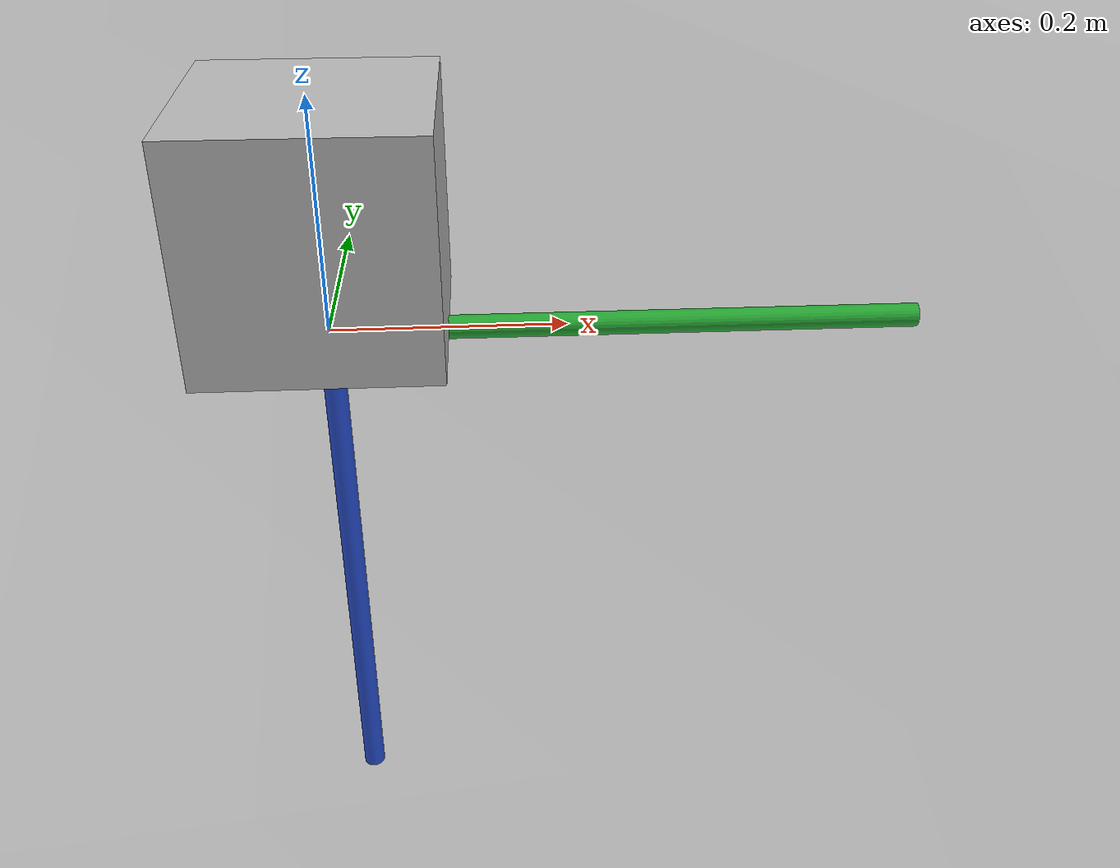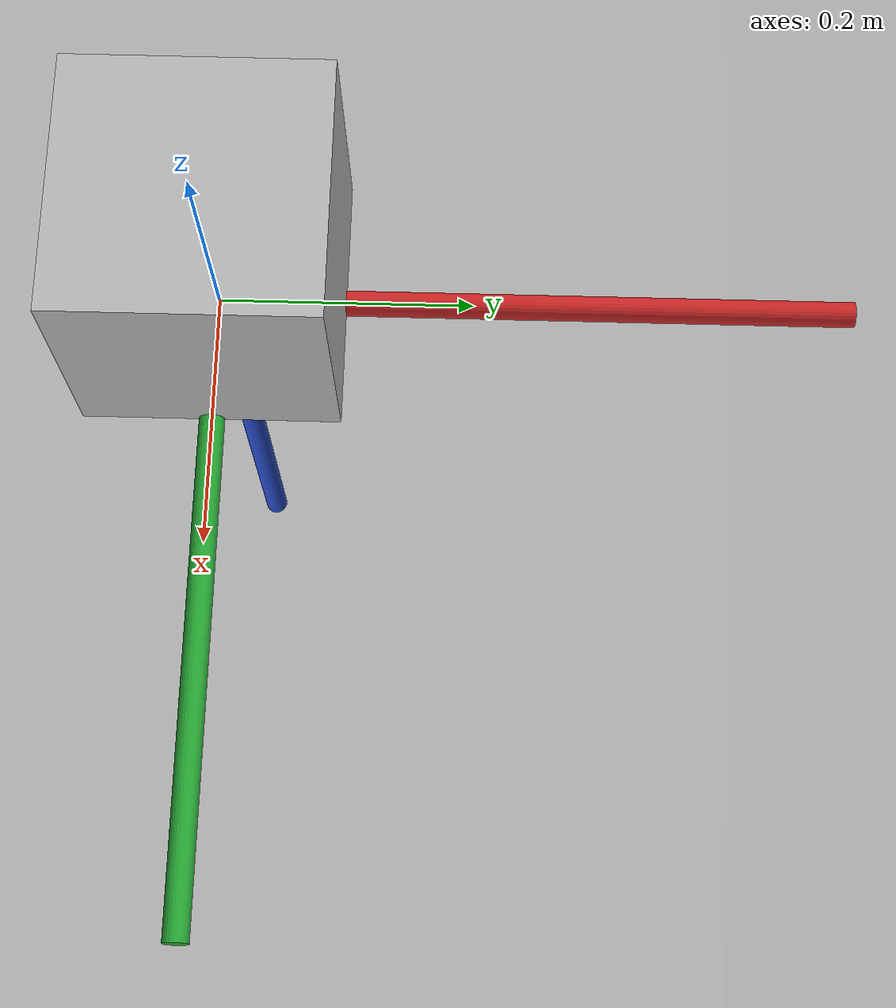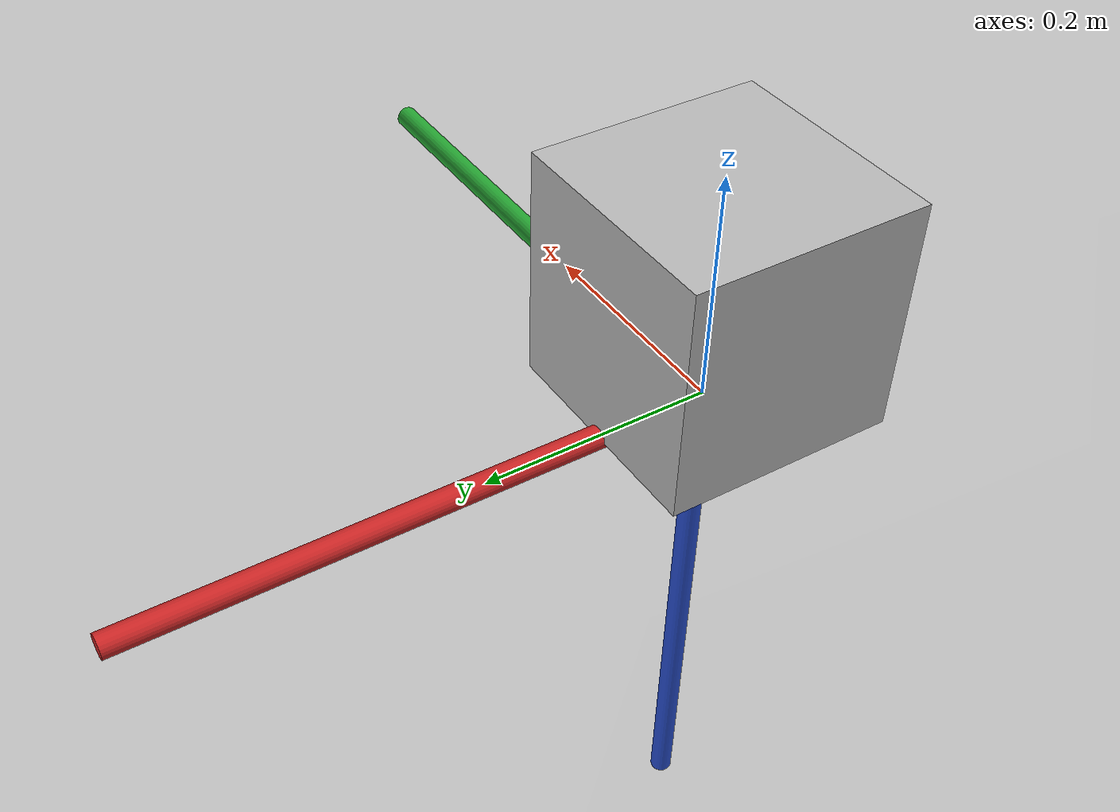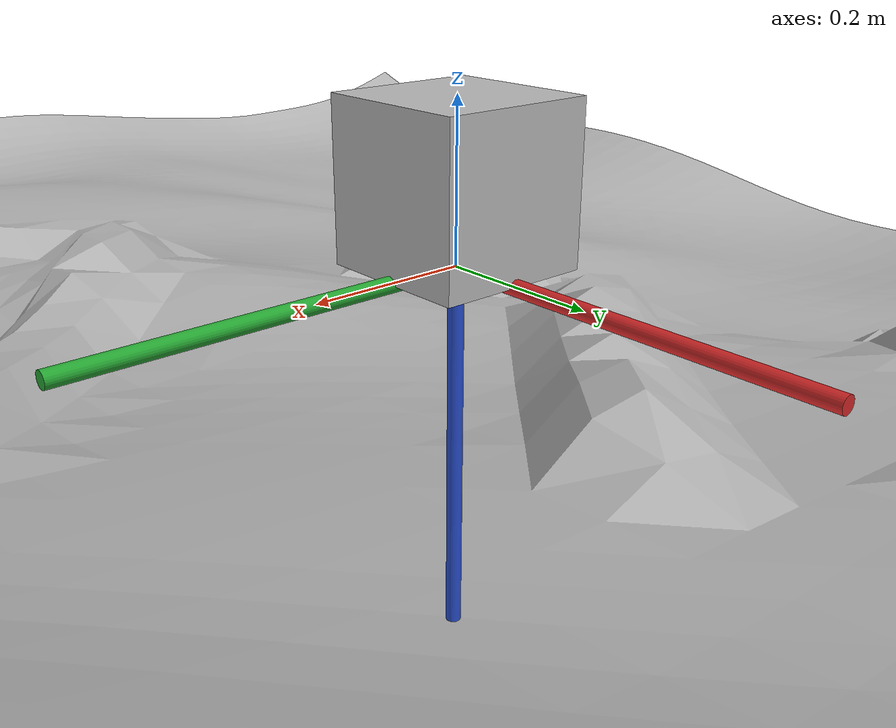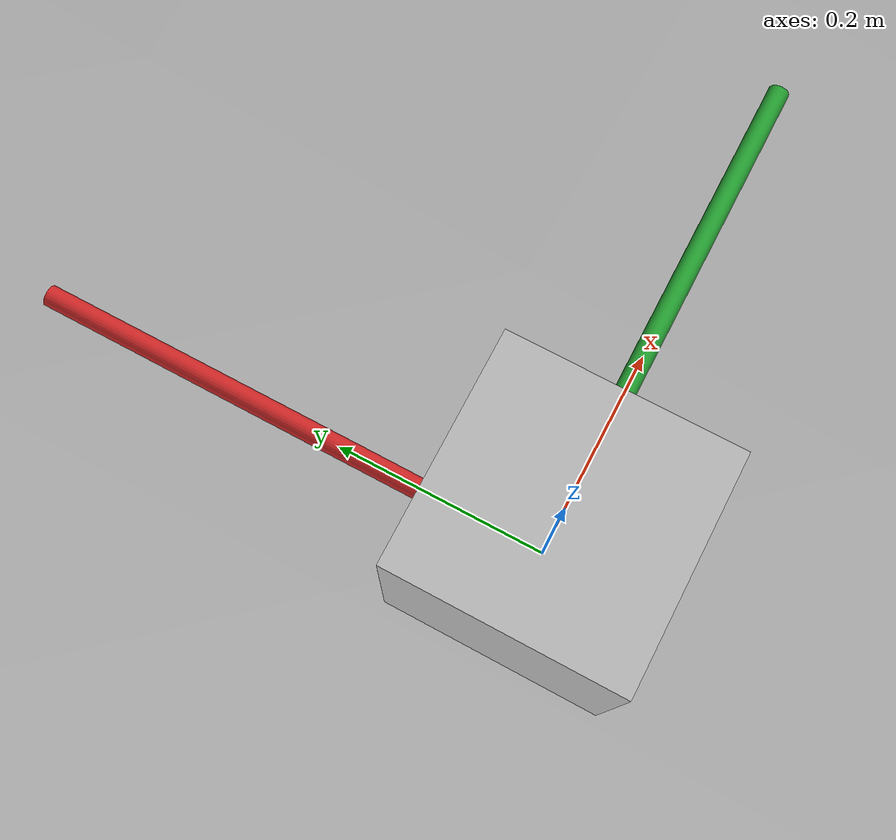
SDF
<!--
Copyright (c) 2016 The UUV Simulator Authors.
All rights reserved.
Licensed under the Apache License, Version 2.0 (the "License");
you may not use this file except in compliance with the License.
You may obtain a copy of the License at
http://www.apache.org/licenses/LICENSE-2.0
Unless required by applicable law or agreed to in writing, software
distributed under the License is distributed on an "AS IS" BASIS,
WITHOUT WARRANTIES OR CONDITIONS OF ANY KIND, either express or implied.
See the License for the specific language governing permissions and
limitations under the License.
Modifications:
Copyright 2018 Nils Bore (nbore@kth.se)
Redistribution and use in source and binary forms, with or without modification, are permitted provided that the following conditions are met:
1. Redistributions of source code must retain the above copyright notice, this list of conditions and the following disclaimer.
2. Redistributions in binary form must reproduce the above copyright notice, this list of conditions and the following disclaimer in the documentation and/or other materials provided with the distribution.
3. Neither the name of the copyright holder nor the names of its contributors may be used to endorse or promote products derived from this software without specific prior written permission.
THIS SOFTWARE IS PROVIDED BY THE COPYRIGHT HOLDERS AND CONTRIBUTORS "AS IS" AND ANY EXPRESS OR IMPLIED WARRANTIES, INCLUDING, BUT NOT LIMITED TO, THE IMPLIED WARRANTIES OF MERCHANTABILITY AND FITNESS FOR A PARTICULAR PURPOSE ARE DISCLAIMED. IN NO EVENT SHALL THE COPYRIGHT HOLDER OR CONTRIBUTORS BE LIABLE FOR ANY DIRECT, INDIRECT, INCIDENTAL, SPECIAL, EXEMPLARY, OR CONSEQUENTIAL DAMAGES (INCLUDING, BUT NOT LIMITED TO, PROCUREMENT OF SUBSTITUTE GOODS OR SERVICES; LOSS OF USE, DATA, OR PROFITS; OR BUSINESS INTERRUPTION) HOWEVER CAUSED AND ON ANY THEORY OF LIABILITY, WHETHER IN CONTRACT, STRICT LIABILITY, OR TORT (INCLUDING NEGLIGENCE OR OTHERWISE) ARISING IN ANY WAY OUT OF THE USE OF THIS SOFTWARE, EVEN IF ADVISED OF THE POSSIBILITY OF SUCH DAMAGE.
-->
<sdf version="1.4">
 <world name="biograd_coast">
  <physics name="default_physics" default="true" type="ode">
   <max_step_size>0.002</max_step_size>
   <real_time_factor>1</real_time_factor>
   <real_time_update_rate>500</real_time_update_rate>
  </physics>
  <scene>
   <ambient>0.01 0.01 0.01 1.0</ambient>
   <sky><clouds><speed>12</speed></clouds></sky>
   <shadows>1</shadows>
  </scene>
  <spherical_coordinates>
   <latitude_deg>43.931833</latitude_deg>
   <longitude_deg>15.442641</longitude_deg>
  </spherical_coordinates>
  <light type="directional" name="sun1">
   <pose>50 0 150 0 0 0</pose>
   <diffuse>1 1 1 1</diffuse>
   <specular>.1 .1 .1 1</specular>
   <direction>0.3 0.3 -1</direction>
   <cast_shadows>false</cast_shadows>
  </light>
  <light type="directional" name="sun_diffuse">
   <pose>-50 0 -150 0 0 0</pose>
   <diffuse>0.6 0.6 0.6 1</diffuse>
   <specular>0 0 0 1</specular>
   <direction>-0.3 -0.3 -1</direction>
   <cast_shadows>false</cast_shadows>
  </light>
  <include><uri>model://ned_frame</uri></include>
  <include><uri>model://biograd</uri></include>
  <include><uri>model://dummy_laser</uri><name>dummy_laser</name></include>
  <plugin name="underwater_world" filename="libuuv_underwater_world_ros_plugin.so">
   <namespace>hydrodynamics</namespace>
   <constant_current>
    <topic>current_velocity</topic>
    <velocity><mean>0</mean><min>-5</min><max>5</max><mu>0.0</mu><noiseAmp>0.0</noiseAmp></velocity>
    <horizontal_angle>
     <mean>0</mean>
     <min>-1.5707963267948966</min>
     <max>1.5707963267948966</max>
     <mu>0.0</mu>
     <noiseAmp>0.0</noiseAmp>
    </horizontal_angle>
    <vertical_angle>
     <mean>0</mean>
     <min>-1.5707963267948966</min>
     <max>1.5707963267948966</max>
     <mu>0.0</mu>
     <noiseAmp>0.0</noiseAmp>
    </vertical_angle>
   </constant_current>
  </plugin>
 </world>
</sdf>

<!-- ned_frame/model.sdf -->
<sdf version='1.5'>
    <model name="world_ned">

      <pose>0 0 0 0 0 0</pose>
      <static>true</static>

      <link name="world_ned">
        <gravity>0</gravity>
        <pose>0 0 0 3.14159265359 0 1.5707963267948966</pose>

        <visual name="N_visual">
          <pose>0.25 0 0 1.5707963267948966 0 1.5707963267948966</pose>
          <geometry>
            <cylinder>
              <radius>0.01</radius>
              <length>0.5</length>
            </cylinder>
          </geometry>
          <material>
            <script>
              <uri>file://media/materials/scripts/gazebo.material</uri>
              <name>Gazebo/Red</name>
            </script>
          </material>
        </visual>

        <visual name="E_visual">
          <pose>0 0.25 0 1.5707963267948966 0 0</pose>
          <geometry>
            <cylinder>
              <radius>0.01</radius>
              <length>0.5</length>
            </cylinder>
          </geometry>
          <material>
            <script>
              <uri>file://media/materials/scripts/gazebo.material</uri>
              <name>Gazebo/Green</name>
            </script>
          </material>
        </visual>

        <visual name="D_visual">
          <pose>0 0 0.25 0 0 0</pose>
          <geometry>
            <cylinder>
              <radius>0.01</radius>
              <length>0.5</length>
            </cylinder>
          </geometry>
          <material>
            <script>
              <uri>file://media/materials/scripts/gazebo.material</uri>
              <name>Gazebo/Blue</name>
            </script>
          </material>
        </visual>
      </link>
    </model>
</sdf>

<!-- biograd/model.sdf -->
<sdf version="1.5">
  <model name="biograd">
    <static>true</static>
    <link name="link">
      <collision name="ground">
        <pose>0 0 0 0 0 0</pose>
        <geometry>
          <mesh><uri>model://biograd/meshes/heightmap.dae</uri></mesh>
        </geometry>
		<laser_retro>50</laser_retro>
      </collision>

      <visual name="ground_sand">
        <cast_shadows>true</cast_shadows>
        <pose>0 0 0 0 0 0</pose>
        <geometry>
          <mesh><uri>model://biograd/meshes/heightmap.dae</uri></mesh>
        </geometry>
        <material>
          <script>
            <uri>file://Media/materials/scripts/sand.material</uri>
            <name>UUVSimulator/SandAndStones</name>
          </script>
        </material>
		<laser_retro>50</laser_retro>
      </visual>
    </link>
  </model>
</sdf>

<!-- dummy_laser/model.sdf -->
<sdf version="1.5">
  <model name="dummy_laser">
      <pose>0 0 0.1 0 0 0</pose>
      <link name="link">
        <inertial>
          <mass>0.1</mass>
        </inertial>
        <collision name="collision">
          <geometry>
            <box>
              <size>0.2 0.2 0.2</size>
            </box>
          </geometry>
        </collision>
        <visual name="visual">
          <geometry>
            <box>
              <size>0.2 0.2 0.2</size>
            </box>
          </geometry>
        </visual>
        <sensor name="dummy_laser_sensor" type="ray">
          <pose>0.01 0 0.0175 0 -0 0</pose>
          <ray>
            <scan>
              <horizontal>
                <samples>1</samples>
                <resolution>1</resolution>
                <min_angle>-2.26889</min_angle>
                <max_angle>2.268899</max_angle>
              </horizontal>
              <vertical>
                <samples>1</samples>
                <resolution>1</resolution>
                <min_angle>-0.535</min_angle>
                <max_angle>0.186132</max_angle>
              </vertical>
            </scan>
            <range>
              <min>0.1</min>
              <max>10</max>
              <resolution>0.01</resolution>
            </range>
	      </ray>
	      <plugin name="dummy_laser_controller" filename="libRayPlugin.so" />
          <always_on>1</always_on>
          <update_rate>30</update_rate>
          <visualize>false</visualize>
        </sensor>
      </link>
  </model>
</sdf>
